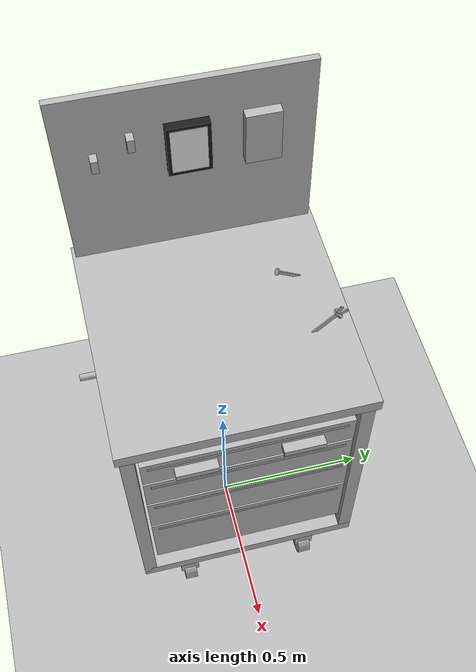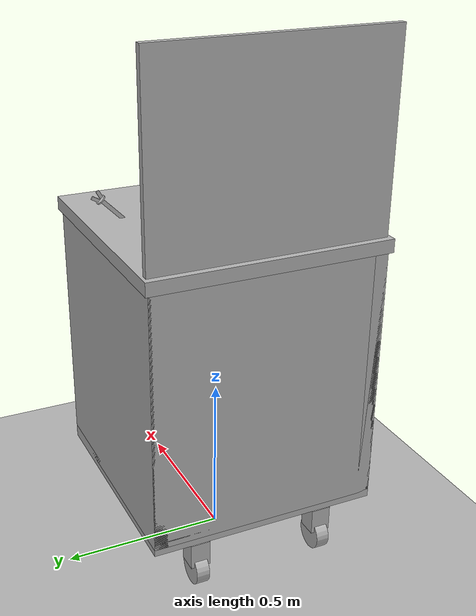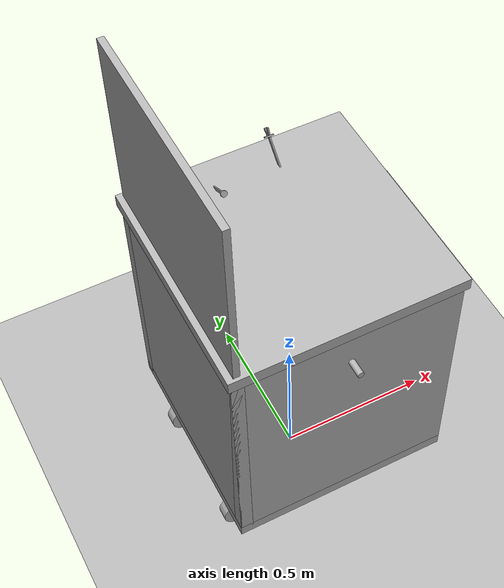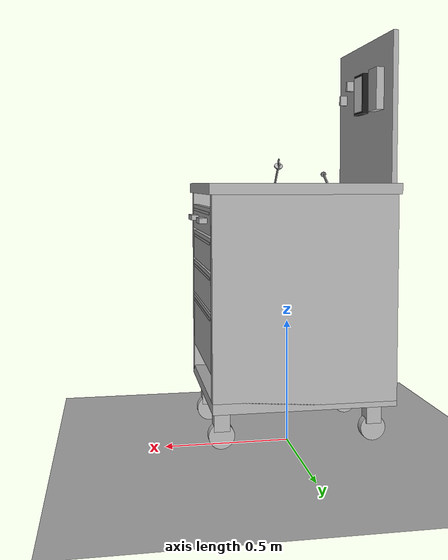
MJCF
<mujoco model="Tool Cabinet Detailed">
  <compiler angle="degree" coordinate="local" inertiafromgeom="true"/>
  <option timestep="0.005" gravity="0 0 -9.81" density="1000" viscosity="0.1" integrator="RK4"/>

  <!-- High Quality Visual Settings (Approximating Professional Requirements) -->
  <visual>
    <!-- 1. Resolution: 4K (3840x2160) -->
    <!-- 2. Shadow Quality: 8192 shadowsize, 8 samples for MSAA -->
    <quality shadowsize="8192" offsamples="8"/>
    <global fovy="45" offwidth="3840" offheight="2160" azimuth="140" elevation="-20"/>
    <map shadowclip="0.5" shadowscale="0.5" zfar="100"/>
    <!-- 3. Atmospheric Fog for depth -->
    <rgba haze="0.15 0.25 0.35 1" fog="0 0 0 1"/>
  </visual>

  <statistic extent="2" center="0 0 0.5"/>

  <default>
    <geom rgba="0.7 0.7 0.7 1" type="box" solref="0.004 1"/>
    <joint damping="1" armature="0.1"/>
  </default>

  <asset>
    <!-- Improved Textures & Materials -->
    <!-- Skybox for metallic reflections (Pseudo-HDR) -->
    <texture type="skybox" builtin="gradient" rgb1="0.6 0.7 0.8" rgb2="0.1 0.15 0.2" width="2048" height="2048"/>

    <!-- Floor with high res checker -->
    <texture type="2d" name="groundplane" builtin="checker" rgb1="0.25 0.26 0.28" rgb2="0.22 0.23 0.24" width="2048" height="2048" mark="edge" markrgb="0.8 0.8 0.8"/>
    <material name="groundplane" texture="groundplane" texrepeat="20 20" reflectance="0.2" shininess="0.1"/>

    <!-- Coffee Bar Materials -->
    <texture name="tex_wood_light" type="2d" builtin="flat" rgb1="0.82 0.7 0.55" width="512" height="512"/>
    <material name="mat_wood_light" texture="tex_wood_light" reflectance="0.2" shininess="0.1"/>

    <!-- ================== PBR-LIKE METALLIC MATERIALS ================== -->
    <!-- NOTE: MuJoCo uses Phong shading, so we approximate PBR by tuning reflectance/specular/shininess -->

    <!-- Main Body: Wood to match Coffee Bar -->
    <material name="mat_silver_body" texture="tex_wood_light" reflectance="0.2" shininess="0.1"/>

    <!-- Drawer Fronts: Wood -->
    <material name="mat_silver_bright" texture="tex_wood_light" reflectance="0.2" shininess="0.1"/>

    <!-- Matte Black Handles -->
    <!-- Low specular, low reflectance -->
    <material name="mat_handle_black" rgba="0.05 0.05 0.05 1" shininess="0.1" specular="0.1" reflectance="0.05"/>

    <!-- Rubber Top Surface -->
    <material name="mat_top_surface" rgba="0.15 0.15 0.15 1" shininess="0.1" specular="0.1" reflectance="0.0"/>

    <!-- Red Plastic Tool Holders (Accents) -->
    <material name="mat_red_tool" rgba="0.8 0.05 0.05 1" shininess="0.6" specular="0.4" reflectance="0.1"/>

    <!-- Chrome Trim -->
    <material name="mat_chrome" rgba="0.98 0.98 0.99 1" shininess="1.0" specular="1.0" reflectance="0.98"/>

    <!-- Toolbox Materials (Exact copies from toolbox_portable.xml) -->
    <material name="mat_tb_silver" rgba="0.75 0.76 0.78 1" specular="0.9" shininess="0.7" reflectance="0.7"/>
    <material name="mat_tb_latch" rgba="0.8 0.82 0.85 1" specular="1.0" shininess="0.9" reflectance="0.8"/>
    <material name="mat_tb_body" rgba="0.08 0.08 0.08 1" specular="0.3" shininess="0.1" reflectance="0.05"/>
    <material name="mat_tb_handle" rgba="0.05 0.05 0.05 1" specular="0.7" shininess="0.8" reflectance="0.3"/>
    <material name="mat_tb_text" rgba="0.8 0.1 0.1 1" specular="0.5" shininess="0.5" emission="0.2"/>

    <!-- Wheel Materials -->
    <material name="mat_wheel_rubber" rgba="0.1 0.1 0.1 1" shininess="0.3" specular="0.2"/>
    <material name="mat_wheel_metal" rgba="0.7 0.7 0.7 1" shininess="0.9" specular="0.9"/>

    <!-- Cloth Material -->
    <material name="mat_towel" rgba="0.9 0.9 0.8 1" shininess="0.1" specular="0.0" reflectance="0.0"/>
  </asset>

  <worldbody>
    <!-- Lighting Setup for "Studio" Look (Approximating Global Illumination) -->
    <!-- Key Light (Cool white for silver, casts main shadow) -->
    <light pos="2 -2 4" dir="-0.5 0.5 -1" diffuse="0.9 0.9 0.95" specular="0.8 0.8 0.8" castshadow="true" active="true"/>

    <!-- Fill Light (Warmer, softens shadows) -->
    <light pos="-2 -2 4" dir="0.5 0.5 -1" diffuse="0.5 0.5 0.45" specular="0.2 0.2 0.2" castshadow="false" active="true"/>

    <!-- Rim Light (Back light for edge definition) -->
    <light pos="0 3 3" dir="0 -1 -0.8" diffuse="0.4 0.4 0.5" specular="0.8 0.8 0.8" castshadow="false" active="true"/>

    <!-- Bounce Light (Simulates light bouncing off floor/walls) -->
    <light pos="0 0 -2" dir="0 0 1" diffuse="0.1 0.1 0.1" specular="0 0 0" castshadow="false" active="true"/>

    <geom name="floor" size="0 0 0.05" type="plane" material="groundplane" condim="3"/>

    <!-- Wrench 1 (Combination Wrench) - Placed on cabinet top (Surface Z=1.06) -->
    <body name="wrench_1" pos="0.1 0.25 1.062" euler="0 90 45">
        <freejoint/>
        <!-- Handle -->
        <geom name="w1_handle" type="box" size="0.006 0.08 0.002" material="mat_silver_bright"/>
        <!-- Open End Head -->
        <body name="w1_head_open" pos="0 0.085 0">
            <geom type="cylinder" size="0.015 0.002" euler="90 0 0" material="mat_silver_bright"/>
            <!-- Jaws -->
            <geom type="box" size="0.005 0.015 0.002" pos="-0.008 0.01 0" euler="0 0 15" material="mat_silver_bright"/>
            <geom type="box" size="0.005 0.015 0.002" pos="0.008 0.01 0" euler="0 0 -15" material="mat_silver_bright"/>
        </body>
        <!-- Ring End Head -->
        <body name="w1_head_ring" pos="0 -0.085 0">
            <geom type="cylinder" size="0.012 0.002" euler="90 0 0" material="mat_silver_bright"/>
        </body>
    </body>

    <!-- Wrench 2 (Smaller) - Placed on cabinet top -->
    <body name="wrench_2" pos="-0.1 0.25 1.062" euler="0 90 -30">
        <freejoint/>
        <!-- Handle -->
        <geom name="w2_handle" type="box" size="0.005 0.06 0.002" material="mat_silver_bright"/>
        <!-- Open End Head -->
        <body name="w2_head_open" pos="0 0.065 0">
            <geom type="cylinder" size="0.012 0.002" euler="90 0 0" material="mat_silver_bright"/>
            <!-- Jaws -->
            <geom type="box" size="0.004 0.012 0.002" pos="-0.006 0.008 0" euler="0 0 15" material="mat_silver_bright"/>
            <geom type="box" size="0.004 0.012 0.002" pos="0.006 0.008 0" euler="0 0 -15" material="mat_silver_bright"/>
        </body>
        <!-- Ring End Head -->
        <body name="w2_head_ring" pos="0 -0.065 0">
            <geom type="cylinder" size="0.01 0.002" euler="90 0 0" material="mat_silver_bright"/>
        </body>
    </body>

    <!-- Toolbox removed as requested -->

    <!-- Tool Cabinet Root -->
    <body name="tool_cabinet" pos="0 0 0.1">
       <!-- Wheels (Casters) -->
      <!-- Front Left -->
      <body name="wheel_fl" pos="0.3 0.2 0">
        <joint name="wheel_fl_steer" axis="0 0 1" type="hinge"/>
        <geom name="wheel_fl" type="cylinder" size="0.05 0.02" zaxis="0 1 0" material="mat_wheel_rubber"/>
        <geom name="wheel_fl_bracket" type="box" size="0.03 0.03 0.04" pos="0 0 0.06" material="mat_wheel_metal"/>
      </body>
      <!-- Front Right -->
      <body name="wheel_fr" pos="0.3 -0.2 0">
        <joint name="wheel_fr_steer" axis="0 0 1" type="hinge"/>
        <geom name="wheel_fr" type="cylinder" size="0.05 0.02" zaxis="0 1 0" material="mat_wheel_rubber"/>
        <geom name="wheel_fr_bracket" type="box" size="0.03 0.03 0.04" pos="0 0 0.06" material="mat_wheel_metal"/>
      </body>
      <!-- Rear Left -->
      <body name="wheel_rl" pos="-0.3 0.2 0">
        <geom name="wheel_rl" type="cylinder" size="0.05 0.02" zaxis="0 1 0" material="mat_wheel_rubber"/>
        <geom name="wheel_rl_bracket" type="box" size="0.03 0.03 0.04" pos="0 0 0.06" material="mat_wheel_metal"/>
      </body>
      <!-- Rear Right -->
      <body name="wheel_rr" pos="-0.3 -0.2 0">
        <geom name="wheel_rr" type="cylinder" size="0.05 0.02" zaxis="0 1 0" material="mat_wheel_rubber"/>
        <geom name="wheel_rr_bracket" type="box" size="0.03 0.03 0.04" pos="0 0 0.06" material="mat_wheel_metal"/>
      </body>

      <!-- Main Cabinet Body -->
      <!-- Height starts above wheels, say 0.1m up -->
      <body name="cabinet_body" pos="0 0 0.12">
        <!-- Frame Dimensions: Width 0.7m (y), Depth 0.5m (x), Height 0.8m (z) -->

        <!-- Bottom Plate -->
        <geom name="bottom_plate" type="box" size="0.35 0.35 0.02" pos="0 0 0.02" material="mat_silver_body"/>

        <!-- Top Surface (Black Worktop) -->
        <geom name="top_surface" type="box" size="0.36 0.36 0.02" pos="0 0 0.82" material="mat_top_surface"/>

        <!-- Side Walls -->
        <geom name="wall_left" type="box" size="0.35 0.02 0.4" pos="0 0.33 0.42" material="mat_silver_body"/>
        <geom name="wall_right" type="box" size="0.35 0.02 0.4" pos="0 -0.33 0.42" material="mat_silver_body"/>

        <!-- Back Wall -->
        <geom name="wall_back" type="box" size="0.02 0.35 0.4" pos="-0.33 0 0.42" material="mat_silver_body"/>

        <!-- Hanging Towel (Cloth Simulation) - REMOVED due to XML Schema compatibility -->

        <!-- Drawers -->
        <!-- Drawer 1 (Top, Thin) -->
        <body name="drawer_1" pos="0 0 0.7">
           <joint name="slide_1" axis="1 0 0" type="slide" range="0 0.3"/>
           <!-- Changed to Silver Bright -->
           <geom name="d1_face" type="box" size="0.01 0.30 0.05" pos="0.34 0 0" material="mat_silver_bright"/>
           <geom name="d1_body" type="box" size="0.32 0.28 0.04" pos="0 0 0" rgba="0.5 0.5 0.5 1"/>
           <!-- Handle -->
           <geom name="d1_handle_L" type="box" size="0.02 0.06 0.01" pos="0.36 0.15 0" material="mat_handle_black"/>
           <geom name="d1_handle_R" type="box" size="0.02 0.06 0.01" pos="0.36 -0.15 0" material="mat_handle_black"/>
           <!-- Chrome trim -->
           <geom name="d1_trim" type="box" size="0.012 0.28 0.005" pos="0.34 0 0.03" material="mat_chrome"/>
        </body>

        <!-- Drawer 2 (Medium) -->
        <body name="drawer_2" pos="0 0 0.58">
           <joint name="slide_2" axis="1 0 0" type="slide" range="0 0.3"/>
           <geom name="d2_face" type="box" size="0.01 0.30 0.06" pos="0.34 0 0" material="mat_silver_bright"/>
           <geom name="d2_body" type="box" size="0.32 0.28 0.05" pos="0 0 0" rgba="0.5 0.5 0.5 1"/>
           <geom name="d2_trim" type="box" size="0.012 0.28 0.005" pos="0.34 0 0.04" material="mat_chrome"/>
        </body>

        <!-- Drawer 3 (Medium) -->
        <body name="drawer_3" pos="0 0 0.44">
           <joint name="slide_3" axis="1 0 0" type="slide" range="0 0.3"/>
           <geom name="d3_face" type="box" size="0.01 0.30 0.07" pos="0.34 0 0" material="mat_silver_bright"/>
           <geom name="d3_body" type="box" size="0.32 0.28 0.06" pos="0 0 0" rgba="0.5 0.5 0.5 1"/>
           <geom name="d3_trim" type="box" size="0.012 0.28 0.005" pos="0.34 0 0.05" material="mat_chrome"/>
        </body>

        <!-- Drawer 4 (Bottom, Large) -->
        <body name="drawer_4" pos="0 0 0.25">
           <joint name="slide_4" axis="1 0 0" type="slide" range="0 0.3"/>
           <geom name="d4_face" type="box" size="0.01 0.30 0.11" pos="0.34 0 0" material="mat_silver_bright"/>
           <geom name="d4_body" type="box" size="0.32 0.28 0.10" pos="0 0 0" rgba="0.5 0.5 0.5 1"/>
           <geom name="d4_trim" type="box" size="0.012 0.28 0.005" pos="0.34 0 0.09" material="mat_chrome"/>
        </body>

        <!-- Pegboard (Back Panel) -->
        <body name="pegboard" pos="-0.33 0 1.1">
            <!-- Silver Pegboard -->
            <geom name="pegboard_panel" type="box" size="0.01 0.35 0.3" material="mat_silver_body"/>

            <!-- Tools/Decorations -->
            <geom name="tool_holder_1" type="box" size="0.02 0.05 0.08" pos="0.02 0.2 0.1" material="mat_red_tool"/>
            <geom name="tool_package" type="box" size="0.015 0.06 0.08" pos="0.02 0 0.1" rgba="0.1 0.1 0.1 1"/>
            <geom name="tool_package_white" type="box" size="0.016 0.05 0.07" pos="0.02 0 0.1" rgba="0.9 0.9 0.9 1"/>
            <geom name="hook_1" type="box" size="0.02 0.01 0.02" pos="0.02 -0.15 0.15" material="mat_red_tool"/>
            <geom name="hook_2" type="box" size="0.02 0.01 0.02" pos="0.02 -0.25 0.10" material="mat_red_tool"/>
        </body>

        <!-- Cloth/Towel Hanging on side handle (Simulated) -->
        <!-- Positioned on the right side -->
        <body name="towel_holder" pos="0 -0.36 0.7">
             <!-- A small bar to hold the towel -->
             <geom name="towel_bar" type="cylinder" size="0.01 0.1" fromto="0 0 0 0 -0.05 0" material="mat_chrome"/>
        </body>

      </body>
    </body>
  </worldbody>
</mujoco>
